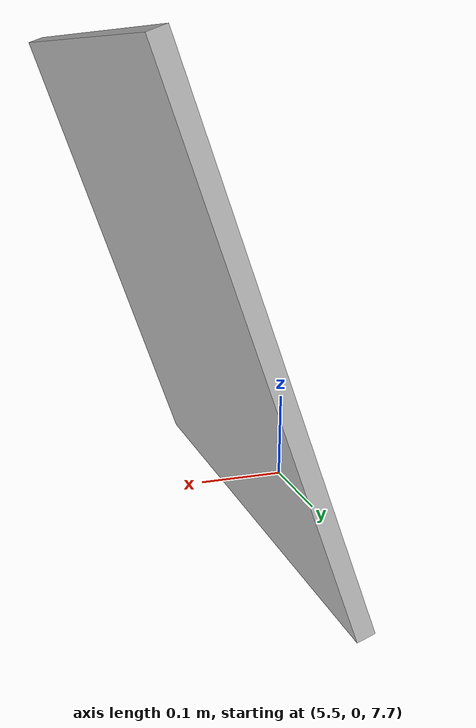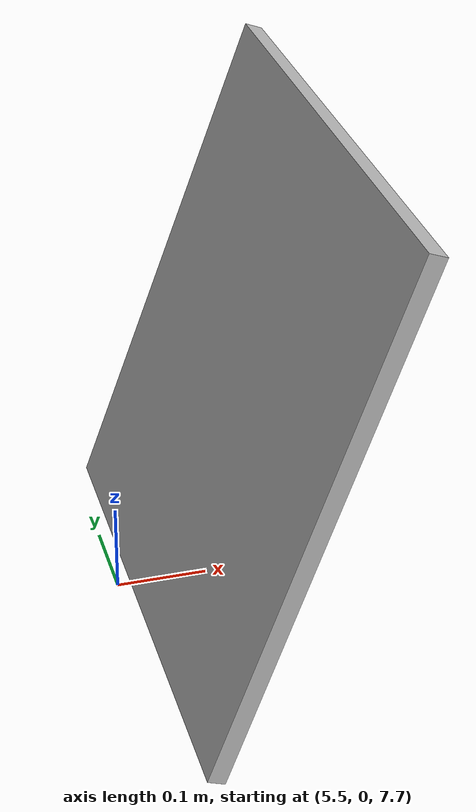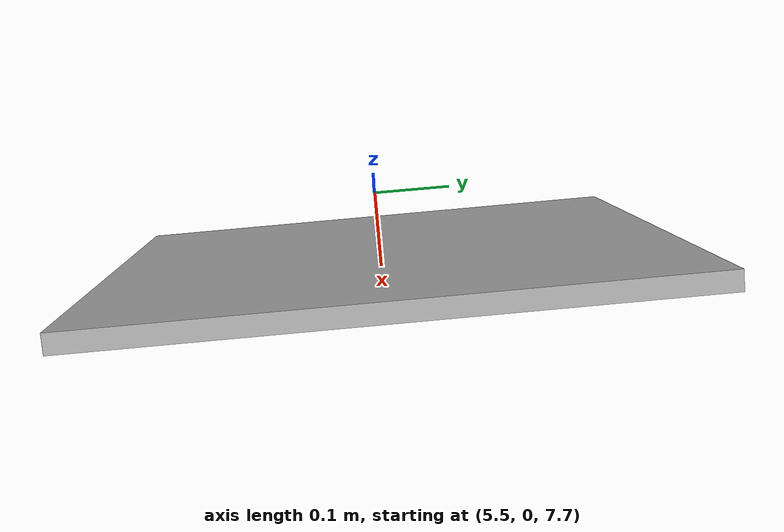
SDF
<?xml version="1.0"?>
<!-- Smoke test (plans 003-005): one sonar 10 m over a ground plane plus one plate target.
     Not a validation world.
     Stationary by default; publish geometry_msgs/Twist on /sas/cmd_vel to move it. -->
<sdf version="1.6">
  <world name="sas_smoke">
    <include><uri>model://ground_plane</uri></include>
    <model name="plate_target">
      <static>true</static>
      <pose>5.6362 0 7.9426 0 0.35 0</pose>
      <link name="link">
        <collision name="c"><geometry><box><size>0.02 0.6 0.6</size></box></geometry><laser_retro>1.0</laser_retro></collision>
        <visual name="v"><geometry><box><size>0.02 0.6 0.6</size></box></geometry></visual>
      </link>
    </model>
    <model name="sonar_mount">
      <pose>0 0 10 0 0.35 0</pose>
      <plugin name="mover" filename="libgazebo_ros_planar_move.so">
        <ros><namespace>/sas</namespace></ros>
        <update_rate>100</update_rate>
        <publish_rate>10</publish_rate>
        <publish_odom>false</publish_odom>
        <publish_odom_tf>false</publish_odom_tf>
      </plugin>
      <link name="sas_array_link">
        <gravity>false</gravity>
        <inertial><mass>10</mass><inertia><ixx>1</ixx><iyy>1</iyy><izz>1</izz></inertia></inertial>
        <sensor name="sas_sonar" type="ray">
          <always_on>true</always_on>
          <update_rate>10</update_rate>
          <ray>
            <scan>
              <horizontal><samples>64</samples><min_angle>-0.40</min_angle><max_angle>0.40</max_angle></horizontal>
              <vertical><samples>64</samples><min_angle>-0.80</min_angle><max_angle>0.20</max_angle></vertical>
            </scan>
            <range><min>2.0</min><max>60.0</max><resolution>0.01</resolution></range>
          </ray>
          <plugin name="sas_sonar_plugin" filename="libsas_sonar_plugin.so">
            <ros><namespace>/sas</namespace></ros>
            <topic>/sas/ping</topic>
            <frame_id>sas_array_link</frame_id>
            <num_elements>16</num_elements>
            <element_spacing>0.04</element_spacing>
            <debug_scatterers>true</debug_scatterers>
          </plugin>
        </sensor>
      </link>
    </model>
  </world>
</sdf>
